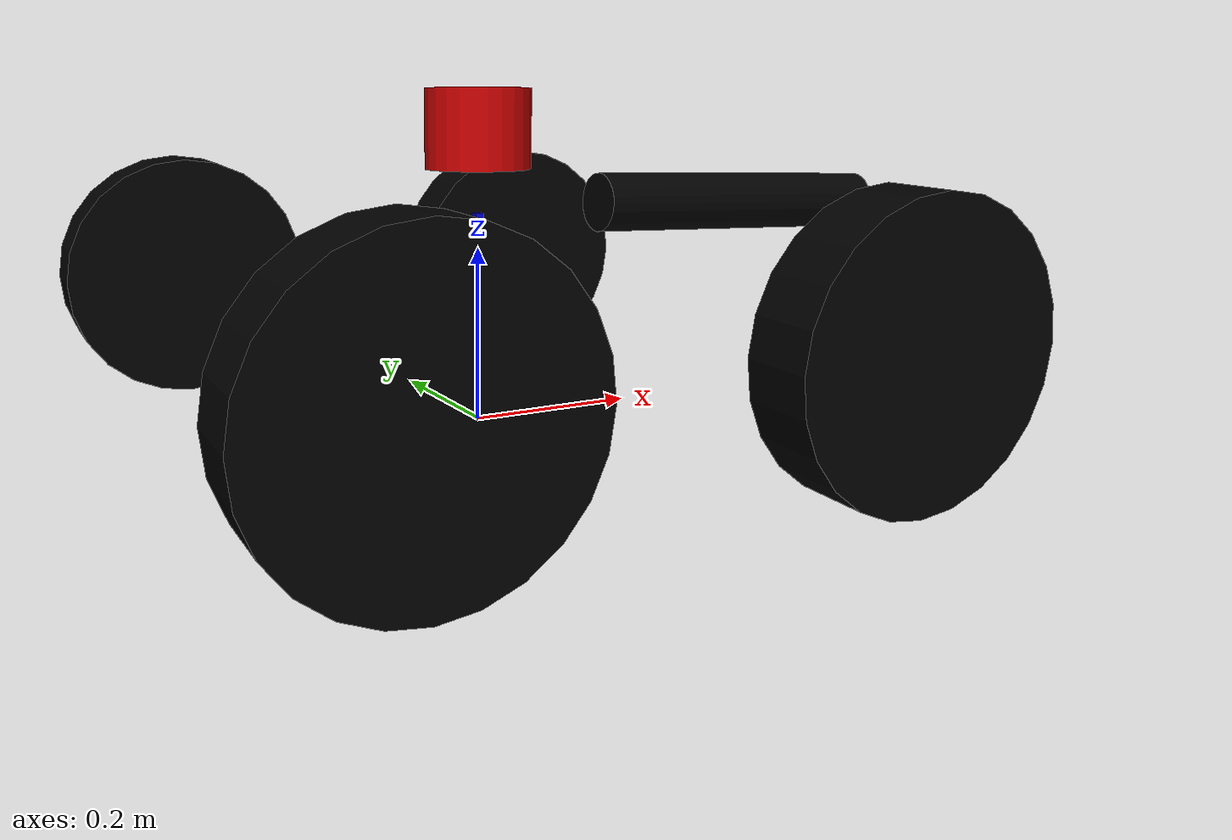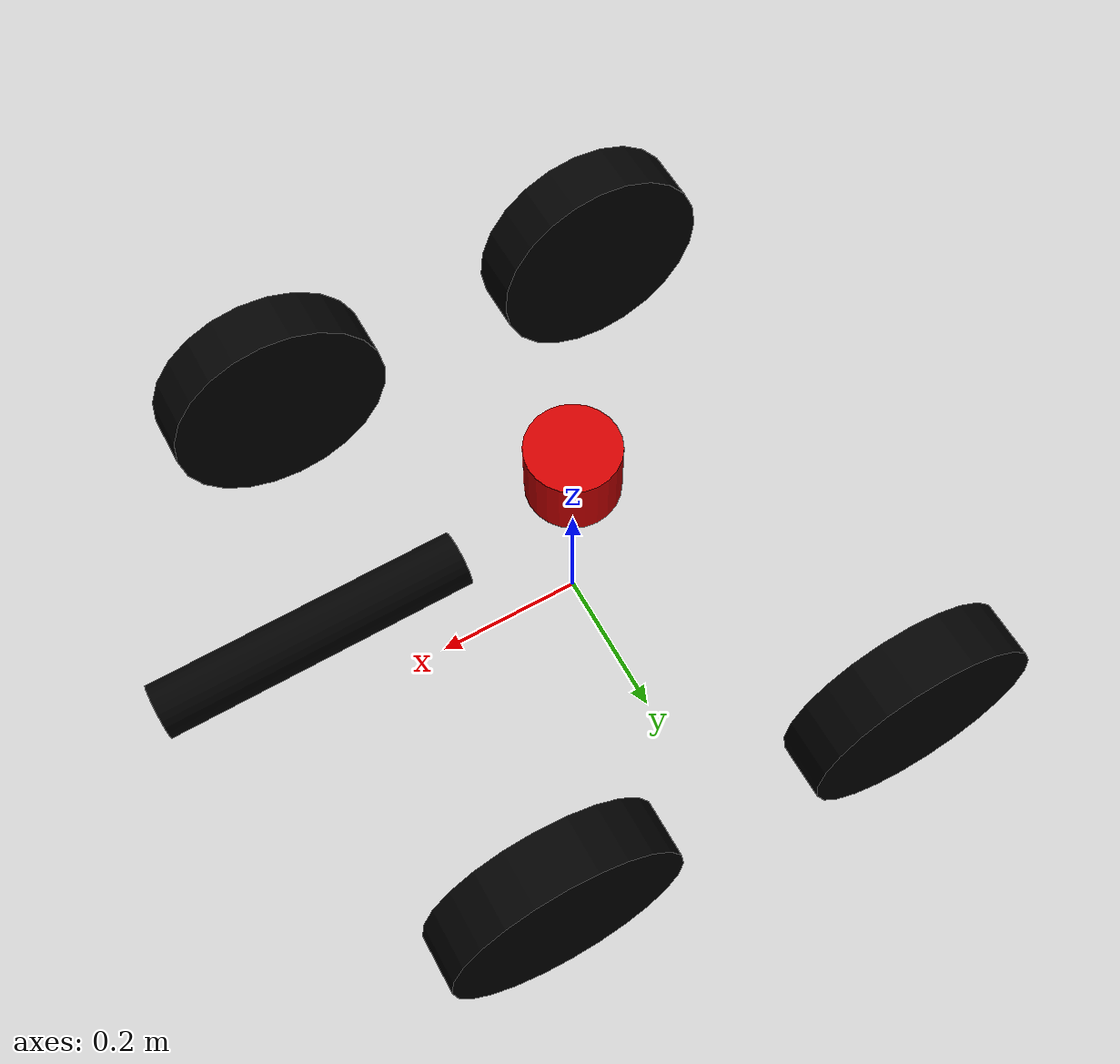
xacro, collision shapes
<?xml version="1.0"?>
<robot xmlns:xacro="http://www.ros.org/wiki/xacro" name="rover">

 <link name="base_footprint">

</link>
  <link name="base_link">
     <inertial>
        <origin xyz="0 0 0" rpy="0 0 0"/>
        <mass value="1.0"/>
       <inertia ixx="0.0395416666667" ixy="0" ixz="0"     iyy="0.106208333333" iyz="0" izz="0.106208333333"/>
  </inertial>
    <visual>
      <geometry>
        <box size=".8 .7 .1"/>
       </geometry>
       <material name="blue">
           <color rgba="0 0 .8 1"/>
         </material>
    </visual>
  </link>

<joint name="base_joint" type="fixed">
    <origin xyz="0.0 0.0 0.135" rpy="0.0 0.0 0.0"/>
    <parent link="base_footprint"/>
    <child link="base_link"/>
    <axis xyz="0.0 0.0 0.0"/>
 </joint>

<link name="camera">
  <visual>
    <geometry>
       <box size="0.1 0.25 0.1" />
     </geometry>
    <material name="LightGrey">
      <color rgba="0.7 0.7 0.7 1.0"/>
    </material>
  </visual>
  <collision>
    <geometry>
       <box size="0.01 0.01 0.01" />
     </geometry>
  </collision>
  <inertial>
    <mass value="0.004"/>
    <origin xyz="0.0 0.0 0.0" rpy="0.0 0.0 0.0"/>
    <inertia ixx="0.0" ixy="0.0" ixz="0.0" iyy="0.0" iyz="0.0" izz="0.0"/>
  </inertial>
</link>

<joint name="camera_joint" type="fixed">
  <origin xyz="0.35 0.0 0.1" rpy="0.0 0.0 0.0"/>
  <parent link="base_link"/>
  <child link="camera"/>
  <axis xyz="0.0 0.0 0.0"/>
  <limit lower="0.0" upper="0.0" effort="0.0" velocity="0.0"/>
</joint>

<link name="hole">
  <visual>
    <geometry>
       <cylinder radius="0.035" length="0.1"/>
    </geometry>
    <material name="black">
          <color rgba="0 0 0 1.0"/>
    </material>
  </visual>
  <collision>
    <geometry>
       <cylinder radius="0.035" length="0.4"/>
    </geometry>
  </collision>
  <inertial>
    <mass value="0.04"/>
    <origin xyz="0.0 0.0 0.0" rpy="0.0 0.0 0.0"/>
    <inertia ixx="0.0" ixy="0.0" ixz="0.0" iyy="0.0" iyz="0.0" izz="0.0"/>
  </inertial>
</link>

<joint name="hole_joint" type="fixed">
  <parent link="camera"/>
  <child link="hole"/>
  <origin xyz="0.01 0.0 0.005" rpy="0.0 1.6 0.0"/>
</joint>

<link name="board">
  <visual>
    <geometry>
       <box size="0.25 0.25 0.12" />
     </geometry>
    <material name="blue">
           <color rgba="0 0 .8 1"/>
    </material>
  </visual>
  <collision>
    <geometry>
       <box size="0.01 0.01 0.01" />
     </geometry>
  </collision>
  <inertial>
    <mass value="0.004"/>
    <origin xyz="0.0 0.0 0.0" rpy="0.0 0.0 0.0"/>
    <inertia ixx="0.0" ixy="0.0" ixz="0.0" iyy="0.0" iyz="0.0" izz="0.0"/>
  </inertial>
</link>

<joint name="board_joint" type="fixed">
  <origin xyz="0.0 0.0 0.1" rpy="0.0 0.0 0.0"/>
  <parent link="base_link"/>
  <child link="board"/>
  <axis xyz="0.0 0.0 0.0"/>
  <limit lower="0.0" upper="0.0" effort="0.0" velocity="0.0"/>
</joint>

<link name="laser_frame">
  <visual>
    <geometry>
      <cylinder radius="0.06" length="0.09"/>
      </geometry>
    <material name="red">
           <color rgba="0.8 0 0 1"/>
    </material>
  </visual>
  <collision>
    <geometry>
      <cylinder radius="0.06" length="0.09"/>
     </geometry>
  </collision>
  <inertial>
    <mass value="0.004"/>
    <origin xyz="0.0 0.0 0.0" rpy="0.0 0.0 0.0"/>
    <inertia ixx="0.0" ixy="0.0" ixz="0.0" iyy="0.0" iyz="0.0" izz="0.0"/>
  </inertial>
</link>

<joint name="laser_joint" type="fixed">
  <origin xyz="0.0 0.0 0.1" rpy="0.0 0.0 0.0"/>
  <parent link="board"/>
  <child link="laser_frame"/>
  <axis xyz="0.0 0.0 0.0"/>
  <limit lower="0.0" upper="0.0" effort="0.0" velocity="0.0"/>
</joint>

<xacro:macro name="wheel_right" params="name x y">
    <link name="wheel_${name}_link">
      <inertial>
        <origin xyz="0 0 0" rpy="1.6 0 0"/>
        <mass value="0.5"/>
<inertia ixx="0.00052666666" ixy="0" ixz="0" iyy="0.00052666666" iyz="0" izz="0.001"/>       </inertial>

      <visual>
        <origin xyz="0 0 0" rpy="0 0 0" />
        <geometry>
        <mesh filename="package://rover/meshes/right_tire.stl" scale="0.0045 0.0045 0.0045"/>

          </geometry>
        <material name="black">
          <color rgba="0 0 0 1.0"/>
        </material>
      </visual>

      <collision>
        <origin xyz="0 0 0" rpy="1.6 0 0"/>
        <geometry>
           <cylinder radius="0.155" length="0.075"/>

        </geometry>
      </collision>
    </link>

    <joint name="wheel_${name}_joint" type="continuous">
        <origin xyz="${x} ${y} 0.0" rpy="0 0.0 0.0"/>
        <parent link="base_link"/>
        <child link="wheel_${name}_link"/>
        <axis xyz="0.0 1.0 0.0"/>
    </joint>

</xacro:macro>

<xacro:macro name="wheel_left" params="name x y">
    <link name="wheel_${name}_link">
      <inertial>
        <origin xyz="0 0 0" rpy="1.6 0 0"/>
        <mass value="0.5"/>
<inertia ixx="0.00052666666" ixy="0" ixz="0" iyy="0.00052666666" iyz="0" izz="0.001"/>       </inertial>

      <visual>
        <origin xyz="0 0 0" rpy="0 0 0" />
        <geometry>
        <mesh filename="package://rover/meshes/left_tire.stl" scale="0.0045 0.0045 0.0045"/>
            </geometry>
        <material name="black">
          <color rgba="0 0 0 1.0"/>
        </material>
      </visual>

      <collision>
        <origin xyz="0 0 0" rpy="1.6 0 0"/>
        <geometry>
           <cylinder radius="0.155" length="0.075"/>

        </geometry>
      </collision>
    </link>

    <joint name="wheel_${name}_joint" type="continuous">
        <origin xyz="${x} ${y} 0.0" rpy="0 0.0 0.0"/>
        <parent link="base_link"/>
        <child link="wheel_${name}_link"/>
        <axis xyz="0.0 1.0 0.0"/>
    </joint>

</xacro:macro>

<xacro:wheel_left name="front_left" x="-0.25" y="-0.40"/>
<xacro:wheel_right name="front_right" x="-0.25" y="0.40"/>
<xacro:wheel_left name="rear_left" x="0.25" y="-0.40"/>
<xacro:wheel_right name="rear_right" x="0.25" y="0.40"/>

<gazebo reference="laser_frame">
    <material>Gazebo/Red</material>
  </gazebo>

<gazebo reference="board">
    <material>Gazebo/Blue</material>
  </gazebo>

 <gazebo reference="camera">
    <material>Gazebo/Orange</material>
  </gazebo>

   <gazebo reference="hole">
    <material>Gazebo/Black</material>
  </gazebo>

   <gazebo reference="base_link">
    <material>Gazebo/Blue</material>
  </gazebo>

<gazebo reference="wheel_front_left_link">
    <material>Gazebo/Black</material>
  </gazebo>

<gazebo reference="wheel_front_right_link">
    <material>Gazebo/Black</material>
  </gazebo>

<gazebo reference="wheel_rear_left_link">
    <material>Gazebo/Black</material>
  </gazebo>

<gazebo reference="wheel_rear_right_link">
    <material>Gazebo/Black</material>
  </gazebo>

<transmission name="wheel_rear_right_joint">
  <type>transmission_interface/SimpleTransmission</type>

  <joint name="wheel_rear_right_joint">
    <hardwareInterface>
      hardware_interface/VelocityJointInterface
    </hardwareInterface>
  </joint>

  <actuator name="wheel_rear_right_joint">
    <mechanicalReduction>1</mechanicalReduction>
    <hardwareInterface>
      VelocityJointInterface
    </hardwareInterface>
  </actuator>

</transmission>

<transmission name="wheel_rear_left_joint">
  <type>transmission_interface/SimpleTransmission</type>

  <joint name="wheel_rear_left_joint">
    <hardwareInterface>
      hardware_interface/VelocityJointInterface
    </hardwareInterface>
  </joint>

  <actuator name="wheel_rear_left_joint">
    <mechanicalReduction>1</mechanicalReduction>
    <hardwareInterface>
      VelocityJointInterface
    </hardwareInterface>
  </actuator>

</transmission>

<transmission name="wheel_front_left_joint">
  <type>transmission_interface/SimpleTransmission</type>

  <joint name="wheel_front_left_joint">
    <hardwareInterface>
      hardware_interface/VelocityJointInterface
    </hardwareInterface>
  </joint>

  <actuator name="wheel_front_left_joint">
    <mechanicalReduction>1</mechanicalReduction>
    <hardwareInterface>
      VelocityJointInterface
    </hardwareInterface>
  </actuator>

</transmission>

<transmission name="wheel_front_right_joint">
  <type>transmission_interface/SimpleTransmission</type>

  <joint name="wheel_front_right_joint">
    <hardwareInterface>
      hardware_interface/VelocityJointInterface
    </hardwareInterface>
  </joint>

  <actuator name="wheel_front_right_joint">
    <mechanicalReduction>1</mechanicalReduction>
    <hardwareInterface>
      VelocityJointInterface
    </hardwareInterface>
  </actuator>

</transmission>

<gazebo>
  <plugin name="gazebo_ros_control" filename="libgazebo_ros_control.so">
    </plugin>
</gazebo>

 <gazebo reference="camera">
    <sensor type="camera" name="camera1">
    <visualize>false</visualize>
      <update_rate>30.0</update_rate>
      <camera name="head">
        <horizontal_fov>1.3962634</horizontal_fov>
        <image>
          <width>320</width>
          <height>329</height>
          <format>R8G8B8</format>
        </image>
        <clip>
          <near>0.02</near>
          <far>7</far>
        </clip>
        <noise>
          <type>gaussian</type>
          <!-- Noise is sampled independently per pixel on each frame.
               That pixel's noise value is added to each of its color
               channels, which at that point lie in the range [0,1]. -->
          <mean>0.0</mean>
          <stddev>0.007</stddev>
        </noise>
      </camera>
      <plugin name="camera_controller" filename="libgazebo_ros_camera.so">
        <alwaysOn>true</alwaysOn>
        <updateRate>0.0</updateRate>
        <cameraName>camera1</cameraName>
        <imageTopicName>image_raw</imageTopicName>
        <cameraInfoTopicName>camera_info</cameraInfoTopicName>
        <frameName>camera_link</frameName>
        <hackBaseline>0.07</hackBaseline>
        <distortionK1>0.0</distortionK1>
        <distortionK2>0.0</distortionK2>
        <distortionK3>0.0</distortionK3>
        <distortionT1>0.0</distortionT1>
        <distortionT2>0.0</distortionT2>
      </plugin>
    </sensor>
  </gazebo>

  <gazebo reference="laser_frame">
    <sensor type="ray" name="laser">
      <pose>0 0 0 0 0 0</pose>
      <visualize>false</visualize>
      <update_rate>40</update_rate>
      <ray>
        <scan>
          <horizontal>
            <samples>360</samples>
            <resolution>1</resolution>
            <min_angle>-3.14</min_angle>
            <max_angle>3.14</max_angle>
          </horizontal>
        </scan>
        <range>
          <min>0.80</min>
          <max>12.0</max>
          <resolution>0.4</resolution>
        </range>
        <noise>
          <type>gaussian</type>
          <mean>0.0</mean>
          <stddev>0.01</stddev>
        </noise>
      </ray>
 <plugin name="gazebo_ros_head_hokuyo_controller" filename="libgazebo_ros_laser.so">         <topicName>/laser/scan</topicName>
        <frameName>laser_frame</frameName>
      </plugin>
    </sensor>
  </gazebo>

</robot>
